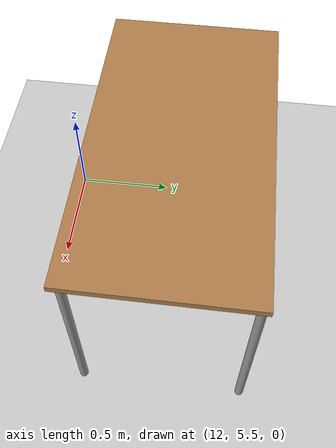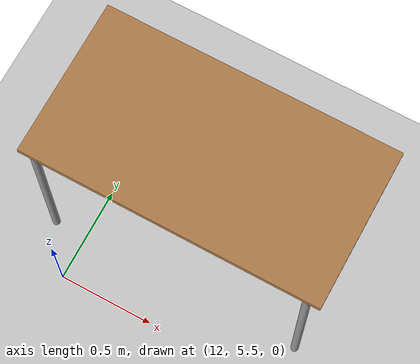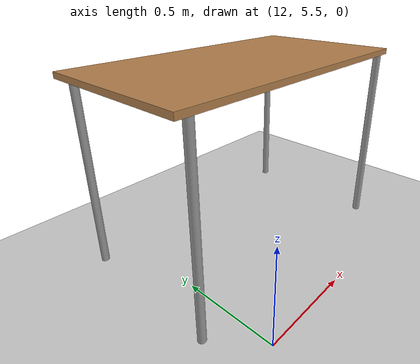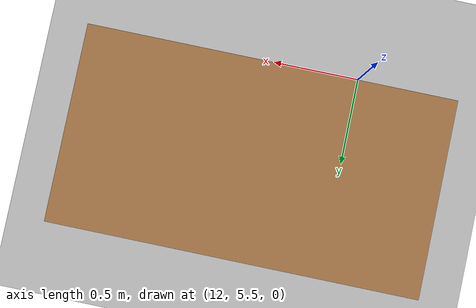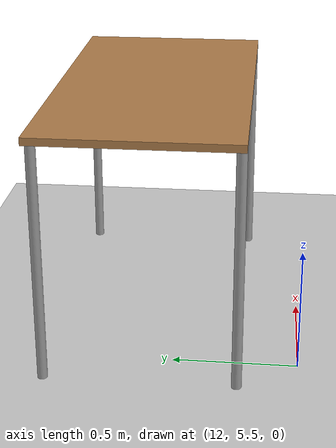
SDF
<sdf version="1.7">
 <world name="default">
  <model name="ground_plane">
   <static>1</static>
   <link name="link1">
    <collision name="collision">
     <geometry><plane><normal>0 0 1</normal><size>100 100</size></plane></geometry>
     <surface>
      <contact><collide_bitmask>65535</collide_bitmask></contact>
      <friction><ode><mu>100</mu><mu2>50</mu2></ode></friction>
     </surface>
    </collision>
    <visual name="visual">
     <cast_shadows>0</cast_shadows>
     <geometry><plane><normal>0 0 1</normal><size>100 100</size></plane></geometry>
     <material>
      <script><uri>file://media/materials/scripts/gazebo.material</uri><name>Gazebo/Grey</name></script>
     </material>
    </visual>
   </link>
  </model>
  <model name="Table">
   <static>1</static>
   <link name="Table_link1">
    <collision name="surface">
     <pose>0 0 1 0 -0 0</pose>
     <geometry><box><size>1.5 0.8 0.03</size></box></geometry>
     <surface><friction><ode><mu>0.6</mu><mu2>0.6</mu2></ode></friction></surface>
    </collision>
    <visual name="visual1">
     <pose>0 0 1 0 -0 0</pose>
     <geometry><box><size>1.5 0.8 0.03</size></box></geometry>
     <material>
      <diffuse>1 1 1 1</diffuse>
      <script><uri>file://media/materials/scripts/gazebo.material</uri><name>Gazebo/Wood</name></script>
      <pbr>
       <metal>
        <albedo_map>https://fuel.ignitionrobotics.org/1.0/openrobotics/models/table/3/files/Table_Diffuse.jpg</albedo_map>
       </metal>
      </pbr>
     </material>
    </visual>
    <collision name="front_left_leg">
     <pose>0.68 0.38 0.5 0 -0 0</pose>
     <geometry><cylinder><radius>0.02</radius><length>1</length></cylinder></geometry>
    </collision>
    <visual name="front_left_leg">
     <pose>0.68 0.38 0.5 0 -0 0</pose>
     <geometry><cylinder><radius>0.02</radius><length>1</length></cylinder></geometry>
     <material>
      <diffuse>0.5 0.5 0.5 1</diffuse>
      <script><uri>file://media/materials/scripts/gazebo.material</uri><name>Gazebo/Grey</name></script>
     </material>
    </visual>
    <collision name="front_right_leg">
     <pose>0.68 -0.38 0.5 0 -0 0</pose>
     <geometry><cylinder><radius>0.02</radius><length>1</length></cylinder></geometry>
    </collision>
    <visual name="front_right_leg">
     <pose>0.68 -0.38 0.5 0 -0 0</pose>
     <geometry><cylinder><radius>0.02</radius><length>1</length></cylinder></geometry>
     <material>
      <diffuse>0.5 0.5 0.5 1</diffuse>
      <script><uri>file://media/materials/scripts/gazebo.material</uri><name>Gazebo/Grey</name></script>
     </material>
    </visual>
    <collision name="back_right_leg">
     <pose>-0.68 -0.38 0.5 0 -0 0</pose>
     <geometry><cylinder><radius>0.02</radius><length>1</length></cylinder></geometry>
    </collision>
    <visual name="back_right_leg">
     <pose>-0.68 -0.38 0.5 0 -0 0</pose>
     <geometry><cylinder><radius>0.02</radius><length>1</length></cylinder></geometry>
     <material>
      <diffuse>0.5 0.5 0.5 1</diffuse>
      <script><uri>file://media/materials/scripts/gazebo.material</uri><name>Gazebo/Grey</name></script>
     </material>
    </visual>
    <collision name="back_left_leg">
     <pose>-0.68 0.38 0.5 0 -0 0</pose>
     <geometry><cylinder><radius>0.02</radius><length>1</length></cylinder></geometry>
    </collision>
    <visual name="back_left_leg">
     <pose>-0.68 0.38 0.5 0 -0 0</pose>
     <geometry><cylinder><radius>0.02</radius><length>1</length></cylinder></geometry>
     <material>
      <diffuse>0.5 0.5 0.5 1</diffuse>
      <script><uri>file://media/materials/scripts/gazebo.material</uri><name>Gazebo/Grey</name></script>
     </material>
    </visual>
   </link>
   <pose>12.5058 6.11591 0 0 -0 0</pose>
  </model>
 </world>
</sdf>
